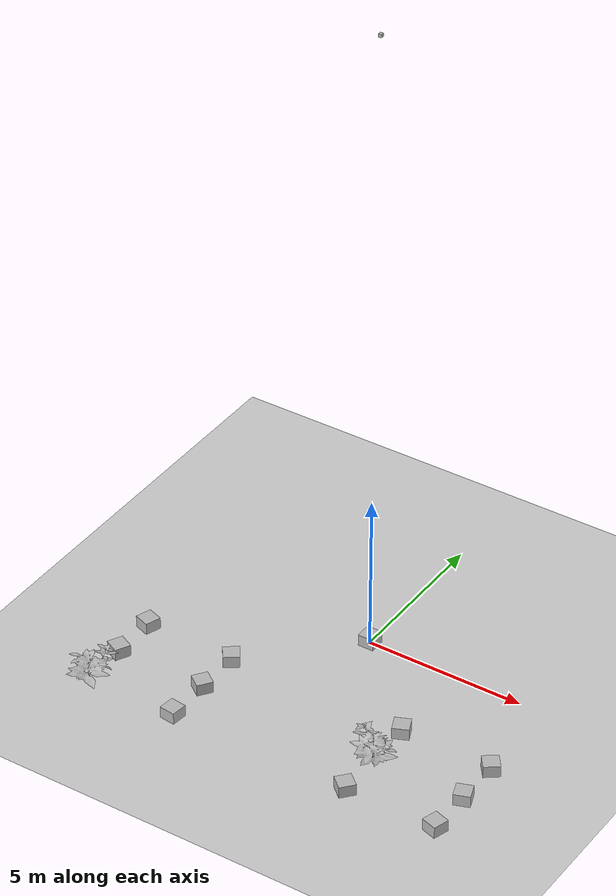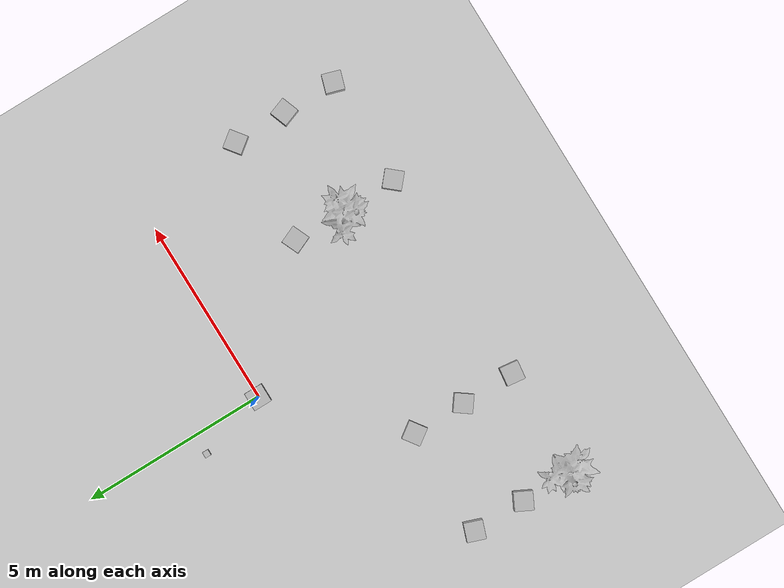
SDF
<sdf version="1.6">
 <world name="Krishi_Drone">
  <physics name="1ms" type="ignored">
   <max_step_size>0.01</max_step_size>
   <real_time_factor>1.0</real_time_factor>
  </physics>
  <plugin filename="gz-sim-physics-system" name="gz::sim::systems::Physics"/>
  <plugin filename="gz-sim-sensors-system" name="gz::sim::systems::Sensors">
   <render_engine>ogre2</render_engine>
  </plugin>
  <plugin filename="gz-sim-user-commands-system" name="gz::sim::systems::UserCommands"/>
  <plugin filename="gz-sim-scene-broadcaster-system" name="gz::sim::systems::SceneBroadcaster"/>
  <scene><ambient>1.0 1.0 1.0</ambient><background>0.8 0.8 0.8</background><grid>true</grid></scene>
  <model name="ground_plane">
   <static>true</static>
   <link name="link">
    <collision name="collision">
     <geometry><plane><normal>0 0 1</normal><size>100 100</size></plane></geometry>
    </collision>
    <visual name="visual">
     <geometry><plane><normal>0 0 1</normal><size>100 100</size></plane></geometry>
     <material>
      <ambient>0.8 0.8 0.8 1</ambient>
      <diffuse>0.8 0.8 0.8 1</diffuse>
      <specular>0.8 0.8 0.8 1</specular>
     </material>
    </visual>
   </link>
  </model>
  <model name="camera">
   <static>true</static>
   <pose>0 0 20 0 1.57 0</pose>
   <link name="link">
    <pose>0.05 0.05 0.05 0 0 0</pose>
    <inertial>
     <mass>0.1</mass>
     <inertia><ixx>0.000166667</ixx><iyy>0.000166667</iyy><izz>0.000166667</izz></inertia>
    </inertial>
    <collision name="collision"><geometry><box><size>0.1 0.1 0.1</size></box></geometry></collision>
    <visual name="visual"><geometry><box><size>0.1 0.1 0.1</size></box></geometry></visual>
    <sensor name="camera" type="camera">
     <camera>
      <horizontal_fov>1.047</horizontal_fov>
      <image><width>1000</width><height>1000</height></image>
      <clip><near>0.1</near><far>100</far></clip>
     </camera>
     <always_on>1</always_on>
     <update_rate>30</update_rate>
     <visualize>false</visualize>
     <topic>camera</topic>
    </sensor>
   </link>
  </model>
  <include><uri>model://package_1</uri><name>package_1</name><pose>0 0 0.1 0 0 0</pose></include>
  <include><uri>model://package_2</uri><name>package_2A</name><pose>-5.75 -2.9 0.1 0 0 1.23</pose></include>
  <include><uri>model://package_2</uri><name>package_2A1</name><pose>-5.75 -4.35 0.1 0 0 2.67</pose></include>
  <include><uri>model://package_3</uri><name>package_2A2</name><pose>-5.75 -5.8 0.1 0 0 0.58</pose></include>
  <include><uri>model://package_2</uri><name>package_2B</name><pose>-2.85 -2.9 0.1 0 0 2.19</pose></include>
  <include><uri>model://package_2</uri><name>package_2B1</name><pose>-2.85 -4.35 0.1 0 0 0.94</pose></include>
  <include><uri>model://package_2</uri><name>package_2B2</name><pose>-2.85 -5.8 0.1 0 0 3.02</pose></include>
  <include><uri>model://package_2</uri><name>package_2C</name><pose>2.9 -2.9 0.1 0 0 0.41</pose></include>
  <include><uri>model://package_3</uri><name>package_2C1</name><pose>2.9 -4.35 0.1 0 0 1.78</pose></include>
  <include><uri>model://package_2</uri><name>package_2C2</name><pose>2.9 -5.8 0.1 0 0 2.43</pose></include>
  <include><uri>model://package_2</uri><name>package_2D</name><pose>5.8 -2.9 0.1 0 0 0.65</pose></include>
  <include><uri>model://package_2</uri><name>package_2D1</name><pose>5.8 -4.35 0.1 0 0 1.92</pose></include>
  <include><uri>model://package_2</uri><name>package_2D2</name><pose>5.8 -5.8 0.1 0 0 2.84</pose></include>
 </world>
</sdf>

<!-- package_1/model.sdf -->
<sdf version='1.6'>
  <model name='package_1'>
    <link name='link_0'>
      <pose frame=''>0 0 0 0 -0 0</pose>
      <self_collide>0</self_collide>
      <enable_wind>0</enable_wind>
      <kinematic>0</kinematic>
      <gravity>1</gravity>
      <inertial>
        <mass>1</mass>
        <pose frame=''>0 0 0 0 -0 0</pose>
        <inertia>
          <ixx>1</ixx>
          <ixy>0</ixy>
          <ixz>0</ixz>
          <iyy>1</iyy>
          <iyz>0</iyz>
          <izz>1</izz>
        </inertia>
      </inertial>
      <visual name='visual'>
        <pose frame=''>0 0 0 0 -0 0</pose>
        <geometry>
          <mesh>
            <uri>model://package_1/meshes/package.dae</uri>
            <scale>0.25 0.25 0.25</scale>
          </mesh>
        </geometry>
        <transparency>0</transparency>
        <cast_shadows>False</cast_shadows>
      </visual>
      <collision name="collision">
        <geometry>
          <mesh>
            <uri>model://package_1/meshes/package.dae</uri>
            <scale>0.25 0.25 0.25</scale>
          </mesh>
        </geometry>
      </collision>
    </link>
    <static>1</static>
    <allow_auto_disable>1</allow_auto_disable>
  </model>

</sdf>

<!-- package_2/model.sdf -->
<sdf version='1.6'>
  <model name='package_2'>
    <link name='link_0'>
      <pose frame=''>0 0 0 0 -0 0</pose>
      <self_collide>0</self_collide>
      <enable_wind>0</enable_wind>
      <kinematic>0</kinematic>
      <gravity>1</gravity>
      <inertial>
        <mass>1</mass>
        <pose frame=''>0 0 0 0 -0 0</pose>
        <inertia>
          <ixx>1</ixx>
          <ixy>0</ixy>
          <ixz>0</ixz>
          <iyy>1</iyy>
          <iyz>0</iyz>
          <izz>1</izz>
        </inertia>
      </inertial>
      <visual name='visual'>
        <pose frame=''>0 0 0 0 -0 0</pose>
        <geometry>
          <mesh>
            <uri>model://package_2/meshes/package.dae</uri>
            <scale>0.25 0.25 0.25</scale>
          </mesh>
        </geometry>
        <transparency>0</transparency>
        <cast_shadows>False</cast_shadows>
      </visual>
      <collision name="collision">
        <geometry>
          <mesh>
            <uri>model://package_2/meshes/package.dae</uri>
            <scale>0.25 0.25 0.25</scale>
          </mesh>
        </geometry>
      </collision>
    </link>
    <static>1</static>
    <allow_auto_disable>1</allow_auto_disable>
  </model>

</sdf>

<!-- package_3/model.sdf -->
<sdf version='1.6'>
  <model name='package_3'>
    <link name='link_0'>
      <pose frame=''>0 0 0 0 -0 0</pose>
      <self_collide>0</self_collide>
      <enable_wind>0</enable_wind>
      <kinematic>0</kinematic>
      <gravity>1</gravity>
      <inertial>
        <mass>1</mass>
        <pose frame=''>0 0 0 0 -0 0</pose>
        <inertia>
          <ixx>1</ixx>
          <ixy>0</ixy>
          <ixz>0</ixz>
          <iyy>1</iyy>
          <iyz>0</iyz>
          <izz>1</izz>
        </inertia>
      </inertial>
      <visual name='visual'>
        <pose frame=''>0 0 0 0 -0 0</pose>
        <geometry>
          <mesh>
            <uri>model://package_3/meshes/package.dae</uri>
            <scale>4 4 2</scale>
          </mesh>
        </geometry>
        <transparency>0</transparency>
        <cast_shadows>False</cast_shadows>
      </visual>
      <collision name="collision">
        <geometry>
          <mesh>
            <uri>model://package_3/meshes/package.dae</uri>
            <scale>4 4 2</scale>
          </mesh>
        </geometry>
      </collision>
    </link>
    <static>1</static>
    <allow_auto_disable>1</allow_auto_disable>
  </model>

</sdf>
